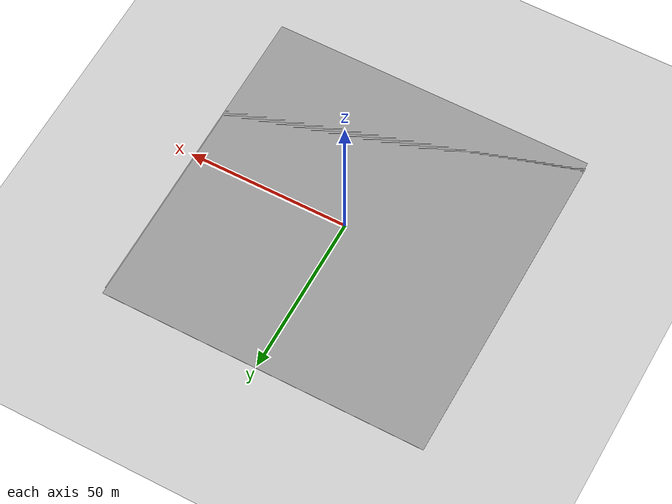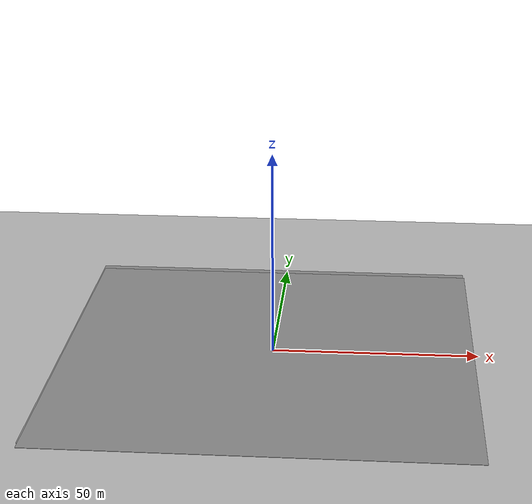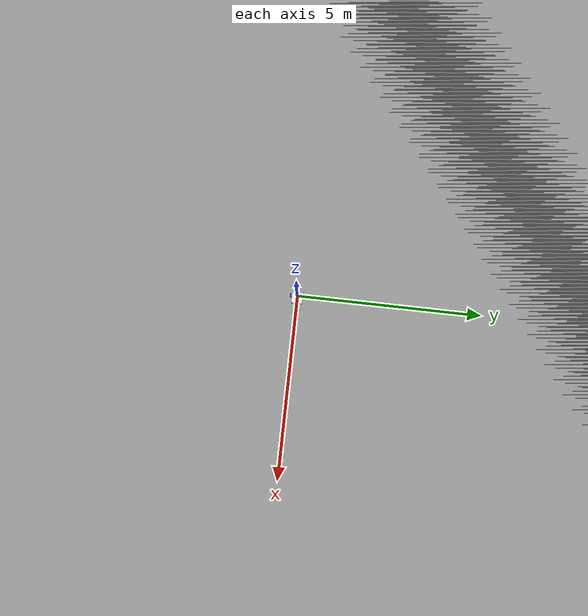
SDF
<sdf version="1.7">
 <world name="default">
  <light name="sun" type="directional">
   <pose>0 0 10 0 -0 0</pose>
   <diffuse>0.8 0.8 0.8 1</diffuse>
   <specular>0.2 0.2 0.2 1</specular>
   <attenuation>
    <range>1000</range>
    <constant>0.9</constant>
    <linear>0.01</linear>
    <quadratic>0.001</quadratic>
   </attenuation>
   <direction>-0.5 0.1 -0.9</direction>
   <spot><inner_angle>0</inner_angle><outer_angle>0</outer_angle><falloff>0</falloff></spot>
  </light>
  <model name="ground_plane">
   <static>1</static>
   <link name="link">
    <collision name="collision">
     <geometry><plane><normal>0 0 1</normal><size>100 100</size></plane></geometry>
     <surface>
      <contact><collide_bitmask>65535</collide_bitmask></contact>
      <friction><ode><mu>100</mu><mu2>50</mu2></ode></friction>
     </surface>
    </collision>
    <visual name="visual">
     <cast_shadows>0</cast_shadows>
     <geometry><plane><normal>0 0 1</normal><size>100 100</size></plane></geometry>
     <material>
      <script><uri>file://media/materials/scripts/gazebo.material</uri><name>Gazebo/Grey</name></script>
     </material>
    </visual>
   </link>
  </model>
  <gravity>0 0 -9.8</gravity>
  <magnetic_field>6e-06 2.3e-05 -4.2e-05</magnetic_field>
  <atmosphere type="adiabatic"/>
  <physics type="ode">
   <max_step_size>0.001</max_step_size>
   <real_time_factor>1</real_time_factor>
   <real_time_update_rate>1000</real_time_update_rate>
  </physics>
  <scene><ambient>0.4 0.4 0.4 1</ambient><background>0.7 0.7 0.7 1</background><shadows>1</shadows></scene>
  <audio><device>default</device></audio>
  <spherical_coordinates>
   <surface_model>EARTH_WGS84</surface_model>
   <latitude_deg>0</latitude_deg>
   <longitude_deg>0</longitude_deg>
   <elevation>0</elevation>
   <heading_deg>0</heading_deg>
  </spherical_coordinates>
  <model name="my_bot">
   <link name="base_link">
    <inertial>
     <pose>0.065 0 0.0625 0 -0 0</pose>
     <mass>0.6</mass>
     <inertia>
      <ixx>0.00525625</ixx>
      <ixy>0</ixy>
      <ixz>0.0005625</ixz>
      <iyy>0.00593125</iyy>
      <iyz>0</iyz>
      <izz>0.008275</izz>
     </inertia>
    </inertial>
    <collision name="base_link_fixed_joint_lump__chasis_collision">
     <pose>0.05 0 0.075 0 -0 0</pose>
     <geometry><box><size>0.3 0.3 0.15</size></box></geometry>
    </collision>
    <collision name="base_link_fixed_joint_lump__caster_wheel_collision_1">
     <pose>0.14 0 0 0 -0 0</pose>
     <geometry><sphere><radius>0.05</radius></sphere></geometry>
     <surface><friction><ode><mu>0.001</mu><mu2>0.01</mu2></ode></friction></surface>
    </collision>
    <visual name="base_link_fixed_joint_lump__chasis_visual">
     <pose>0.05 0 0.075 0 -0 0</pose>
     <geometry><box><size>0.3 0.3 0.15</size></box></geometry>
     <material>
      <script><name>Gazebo/white</name><uri>file://media/materials/scripts/gazebo.material</uri></script>
     </material>
    </visual>
    <visual name="base_link_fixed_joint_lump__caster_wheel_visual_1">
     <pose>0.14 0 0 0 -0 0</pose>
     <geometry><sphere><radius>0.05</radius></sphere></geometry>
     <material>
      <script><name>Gazebo/Black</name><uri>file://media/materials/scripts/gazebo.material</uri></script>
     </material>
    </visual>
   </link>
   <joint name="left_wheel_joint" type="revolute">
    <pose relative_to="base_link">0 0.175 0 -1.5708 0 0</pose>
    <parent>base_link</parent>
    <child>left_wheel</child>
    <axis>
     <xyz>0 0 1</xyz>
     <limit><lower>-1e+16</lower><upper>1e+16</upper></limit>
     <dynamics><spring_reference>0</spring_reference><spring_stiffness>0</spring_stiffness></dynamics>
    </axis>
   </joint>
   <link name="left_wheel">
    <pose relative_to="left_wheel_joint">0 0 0 0 -0 0</pose>
    <inertial>
     <mass>0.1</mass>
     <inertia>
      <ixx>7.58333e-05</ixx>
      <ixy>0</ixy>
      <ixz>0</ixz>
      <iyy>7.58333e-05</iyy>
      <iyz>0</iyz>
      <izz>0.000125</izz>
     </inertia>
    </inertial>
    <collision name="left_wheel_collision">
     <geometry><cylinder><length>0.04</length><radius>0.05</radius></cylinder></geometry>
    </collision>
    <visual name="left_wheel_visual">
     <geometry><cylinder><length>0.04</length><radius>0.05</radius></cylinder></geometry>
     <material>
      <script><name>Gazebo/Blue</name><uri>file://media/materials/scripts/gazebo.material</uri></script>
     </material>
    </visual>
   </link>
   <joint name="right_wheel_joint" type="revolute">
    <pose relative_to="base_link">0 -0.175 0 1.5708 -0 0</pose>
    <parent>base_link</parent>
    <child>right_wheel</child>
    <axis>
     <xyz>0 0 -1</xyz>
     <limit><lower>-1e+16</lower><upper>1e+16</upper></limit>
     <dynamics><spring_reference>0</spring_reference><spring_stiffness>0</spring_stiffness></dynamics>
    </axis>
   </joint>
   <link name="right_wheel">
    <pose relative_to="right_wheel_joint">0 0 0 0 -0 0</pose>
    <inertial>
     <mass>0.1</mass>
     <inertia>
      <ixx>7.58333e-05</ixx>
      <ixy>0</ixy>
      <ixz>0</ixz>
      <iyy>7.58333e-05</iyy>
      <iyz>0</iyz>
      <izz>0.000125</izz>
     </inertia>
    </inertial>
    <collision name="right_wheel_collision">
     <geometry><cylinder><length>0.04</length><radius>0.05</radius></cylinder></geometry>
    </collision>
    <visual name="right_wheel_visual">
     <geometry><cylinder><length>0.04</length><radius>0.05</radius></cylinder></geometry>
     <material>
      <script><name>Gazebo/Blue</name><uri>file://media/materials/scripts/gazebo.material</uri></script>
     </material>
    </visual>
   </link>
   <static>0</static>
   <plugin name="diff_drive" filename="libgazebo_ros_diff_drive.so">
    <left_joint>left_wheel_joint</left_joint>
    <right_joint>right_wheel_joint</right_joint>
    <wheel_seperation>0.35</wheel_seperation>
    <wheel_diameter>0.1</wheel_diameter>
    <max_wheel_torque>200</max_wheel_torque>
    <max_wheel_acceleration>10.0</max_wheel_acceleration>
    <odometry_frame>odom</odometry_frame>
    <robot_base_frame>base_link</robot_base_frame>
    <publish_odom>1</publish_odom>
    <publish_odom_tf>1</publish_odom_tf>
    <publish_wheel_tf>1</publish_wheel_tf>
   </plugin>
   <pose>0.006678 2.5e-05 0.05 0 1.5e-05 0.001523</pose>
  </model>
  <model name="ground_plane_0">
   <static>1</static>
   <link name="link">
    <collision name="collision">
     <geometry><plane><normal>0 0 1</normal><size>100 100</size></plane></geometry>
     <surface>
      <contact><collide_bitmask>65535</collide_bitmask></contact>
      <friction><ode><mu>100</mu><mu2>50</mu2></ode></friction>
     </surface>
    </collision>
    <visual name="visual">
     <cast_shadows>0</cast_shadows>
     <geometry><plane><normal>0 0 1</normal><size>100 100</size></plane></geometry>
     <material>
      <script><uri>file://media/materials/scripts/gazebo.material</uri><name>Gazebo/Grey</name></script>
     </material>
    </visual>
   </link>
   <pose>-1.0623 -1.0807 0 0 -0 0</pose>
  </model>
  <light name="sun" type="directional">
   <pose>-0.185527 0.252351 10 0 -0 0</pose>
   <diffuse>0.8 0.8 0.8 1</diffuse>
   <specular>0.2 0.2 0.2 1</specular>
   <attenuation>
    <range>1000</range>
    <constant>0.9</constant>
    <linear>0.01</linear>
    <quadratic>0.001</quadratic>
   </attenuation>
   <direction>-0.5 0.1 -0.9</direction>
  </light>
  <model name="ground_plane_1">
   <static>1</static>
   <link name="link">
    <collision name="collision">
     <geometry><plane><normal>0 0 1</normal><size>100 100</size></plane></geometry>
     <surface>
      <contact><collide_bitmask>65535</collide_bitmask></contact>
      <friction><ode><mu>100</mu><mu2>50</mu2></ode></friction>
     </surface>
    </collision>
    <visual name="visual">
     <cast_shadows>0</cast_shadows>
     <geometry><plane><normal>0 0 1</normal><size>100 100</size></plane></geometry>
     <material>
      <script><uri>file://media/materials/scripts/gazebo.material</uri><name>Gazebo/Grey</name></script>
     </material>
    </visual>
   </link>
   <pose>-1.35589 0.833838 0 0 -0 0</pose>
  </model>
 </world>
</sdf>
